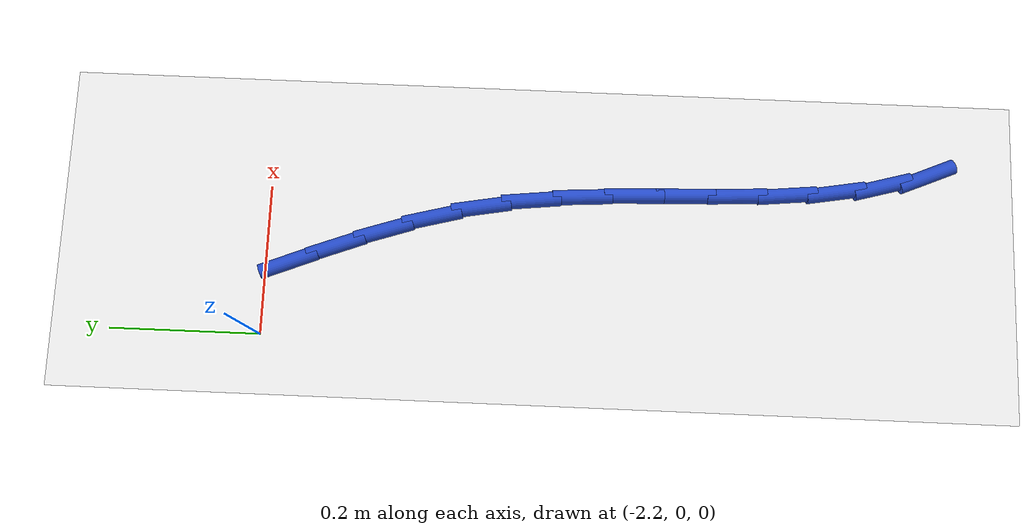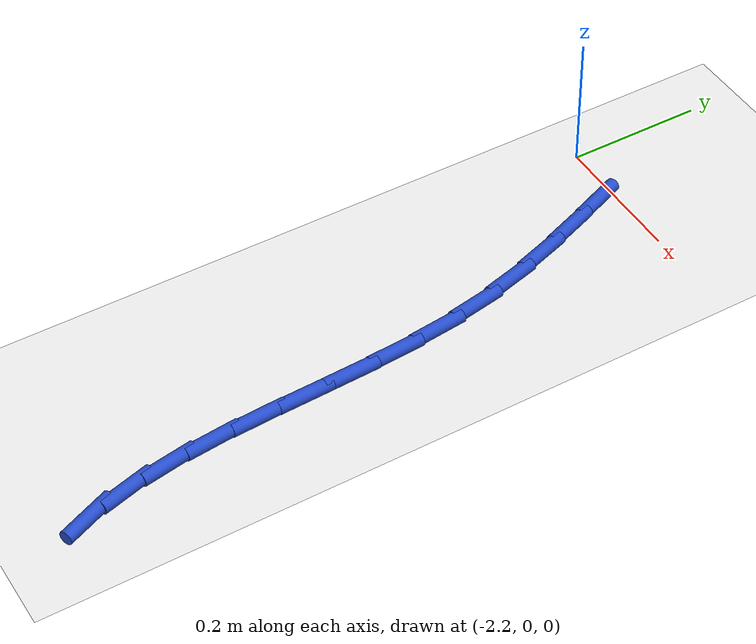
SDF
<sdf version="1.6">
 <world name="default">
  <model name="ground_plane">
   <static>1</static>
   <link name="link">
    <collision name="collision">
     <geometry><plane><normal>0 0 1</normal><size>100 100</size></plane></geometry>
     <surface><friction><ode><mu>100</mu><mu2>50</mu2></ode></friction></surface>
    </collision>
    <visual name="visual">
     <cast_shadows>0</cast_shadows>
     <geometry><plane><normal>0 0 1</normal><size>100 100</size></plane></geometry>
     <material>
      <script><uri>file://media/materials/scripts/gazebo.material</uri><name>Gazebo/WhiteGlow</name></script>
     </material>
    </visual>
   </link>
  </model>
  <model name="line">
   <link name="link_56">
    <pose>-2.10327405805313 -0.03182886534771133 0.01 0 1.57 -1.1909337254734707</pose>
    <collision name="collision">
     <geometry><cylinder><radius>0.01</radius><length>0.08</length></cylinder></geometry>
    </collision>
    <visual name="visual">
     <material>
      <script><name>Gazebo/Blue</name><uri>file://media/materials/scripts/gazebo.material</uri></script>
     </material>
     <geometry><cylinder><radius>0.01</radius><length>0.08</length></cylinder></geometry>
    </visual>
   </link>
   <link name="link_57">
    <pose>-2.0788423517759043 -0.09302234680239702 0.01 0 1.57 -1.212272479570358</pose>
    <collision name="collision">
     <geometry><cylinder><radius>0.01</radius><length>0.08</length></cylinder></geometry>
    </collision>
    <visual name="visual">
     <material>
      <script><name>Gazebo/Blue</name><uri>file://media/materials/scripts/gazebo.material</uri></script>
     </material>
     <geometry><cylinder><radius>0.01</radius><length>0.08</length></cylinder></geometry>
    </visual>
   </link>
   <link name="link_58">
    <pose>-2.055600781886538 -0.15504642698979249 0.01 0 1.57 -1.2540555285638582</pose>
    <collision name="collision">
     <geometry><cylinder><radius>0.01</radius><length>0.08</length></cylinder></geometry>
    </collision>
    <visual name="visual">
     <material>
      <script><name>Gazebo/Blue</name><uri>file://media/materials/scripts/gazebo.material</uri></script>
     </material>
     <geometry><cylinder><radius>0.01</radius><length>0.08</length></cylinder></geometry>
    </visual>
   </link>
   <link name="link_59">
    <pose>-2.0348814562081556 -0.21825823890421203 0.01 0 1.57 -1.316019863898234</pose>
    <collision name="collision">
     <geometry><cylinder><radius>0.01</radius><length>0.08</length></cylinder></geometry>
    </collision>
    <visual name="visual">
     <material>
      <script><name>Gazebo/Blue</name><uri>file://media/materials/scripts/gazebo.material</uri></script>
     </material>
     <geometry><cylinder><radius>0.01</radius><length>0.08</length></cylinder></geometry>
    </visual>
   </link>
   <link name="link_60">
    <pose>-2.0180164825638807 -0.2830149155399669 0.01 0 1.57 -1.3945226569809834</pose>
    <collision name="collision">
     <geometry><cylinder><radius>0.01</radius><length>0.08</length></cylinder></geometry>
    </collision>
    <visual name="visual">
     <material>
      <script><name>Gazebo/Blue</name><uri>file://media/materials/scripts/gazebo.material</uri></script>
     </material>
     <geometry><cylinder><radius>0.01</radius><length>0.08</length></cylinder></geometry>
    </visual>
   </link>
   <link name="link_61">
    <pose>-2.006155385619632 -0.34960450191232817 0.01 0 1.57 -1.4627156337201226</pose>
    <collision name="collision">
     <geometry><cylinder><radius>0.01</radius><length>0.08</length></cylinder></geometry>
    </collision>
    <visual name="visual">
     <material>
      <script><name>Gazebo/Blue</name><uri>file://media/materials/scripts/gazebo.material</uri></script>
     </material>
     <geometry><cylinder><radius>0.01</radius><length>0.08</length></cylinder></geometry>
    </visual>
   </link>
   <link name="link_62">
    <pose>-1.9987689732244311 -0.4176798302708364 0.01 0 1.57 -1.5077949338587666</pose>
    <collision name="collision">
     <geometry><cylinder><radius>0.01</radius><length>0.08</length></cylinder></geometry>
    </collision>
    <visual name="visual">
     <material>
      <script><name>Gazebo/Blue</name><uri>file://media/materials/scripts/gazebo.material</uri></script>
     </material>
     <geometry><cylinder><radius>0.01</radius><length>0.08</length></cylinder></geometry>
    </visual>
   </link>
   <link name="link_63">
    <pose>-1.9944241982297797 -0.48655172149836756 0.01 0 1.57 -1.5310220456796824</pose>
    <collision name="collision">
     <geometry><cylinder><radius>0.01</radius><length>0.08</length></cylinder></geometry>
    </collision>
    <visual name="visual">
     <material>
      <script><name>Gazebo/Blue</name><uri>file://media/materials/scripts/gazebo.material</uri></script>
     </material>
     <geometry><cylinder><radius>0.01</radius><length>0.08</length></cylinder></geometry>
    </visual>
   </link>
   <link name="link_64">
    <pose>-1.9916792809495614 -0.5555276921567116 0.01 0 1.57 -1.532988188990062</pose>
    <collision name="collision">
     <geometry><cylinder><radius>0.01</radius><length>0.08</length></cylinder></geometry>
    </collision>
    <visual name="visual">
     <material>
      <script><name>Gazebo/Blue</name><uri>file://media/materials/scripts/gazebo.material</uri></script>
     </material>
     <geometry><cylinder><radius>0.01</radius><length>0.08</length></cylinder></geometry>
    </visual>
   </link>
   <link name="link_65">
    <pose>-1.9890924416976608 -0.6239152588076605 0.01 0 1.57 -1.513182725925579</pose>
    <collision name="collision">
     <geometry><cylinder><radius>0.01</radius><length>0.08</length></cylinder></geometry>
    </collision>
    <visual name="visual">
     <material>
      <script><name>Gazebo/Blue</name><uri>file://media/materials/scripts/gazebo.material</uri></script>
     </material>
     <geometry><cylinder><radius>0.01</radius><length>0.08</length></cylinder></geometry>
    </visual>
   </link>
   <link name="link_66">
    <pose>-1.9852219007879623 -0.6910219380130067 0.01 0 1.57 -1.4698708310172854</pose>
    <collision name="collision">
     <geometry><cylinder><radius>0.01</radius><length>0.08</length></cylinder></geometry>
    </collision>
    <visual name="visual">
     <material>
      <script><name>Gazebo/Blue</name><uri>file://media/materials/scripts/gazebo.material</uri></script>
     </material>
     <geometry><cylinder><radius>0.01</radius><length>0.08</length></cylinder></geometry>
    </visual>
   </link>
   <link name="link_67">
    <pose>-1.978625878534351 -0.7561552463345399 0.01 0 1.57 -1.4001694340400075</pose>
    <collision name="collision">
     <geometry><cylinder><radius>0.01</radius><length>0.08</length></cylinder></geometry>
    </collision>
    <visual name="visual">
     <material>
      <script><name>Gazebo/Blue</name><uri>file://media/materials/scripts/gazebo.material</uri></script>
     </material>
     <geometry><cylinder><radius>0.01</radius><length>0.08</length></cylinder></geometry>
    </visual>
   </link>
   <link name="link_68">
    <pose>-1.9678625952507098 -0.8186227003340528 0.01 0 1.57 -1.3005858441594653</pose>
    <collision name="collision">
     <geometry><cylinder><radius>0.01</radius><length>0.08</length></cylinder></geometry>
    </collision>
    <visual name="visual">
     <material>
      <script><name>Gazebo/Blue</name><uri>file://media/materials/scripts/gazebo.material</uri></script>
     </material>
     <geometry><cylinder><radius>0.01</radius><length>0.08</length></cylinder></geometry>
    </visual>
   </link>
   <link name="link_69">
    <pose>-1.9514902712509257 -0.877731816573336 0.01 0 1.57 -1.1685662287608332</pose>
    <collision name="collision">
     <geometry><cylinder><radius>0.01</radius><length>0.08</length></cylinder></geometry>
    </collision>
    <visual name="visual">
     <material>
      <script><name>Gazebo/Blue</name><uri>file://media/materials/scripts/gazebo.material</uri></script>
     </material>
     <geometry><cylinder><radius>0.01</radius><length>0.08</length></cylinder></geometry>
    </visual>
   </link>
  </model>
 </world>
</sdf>
